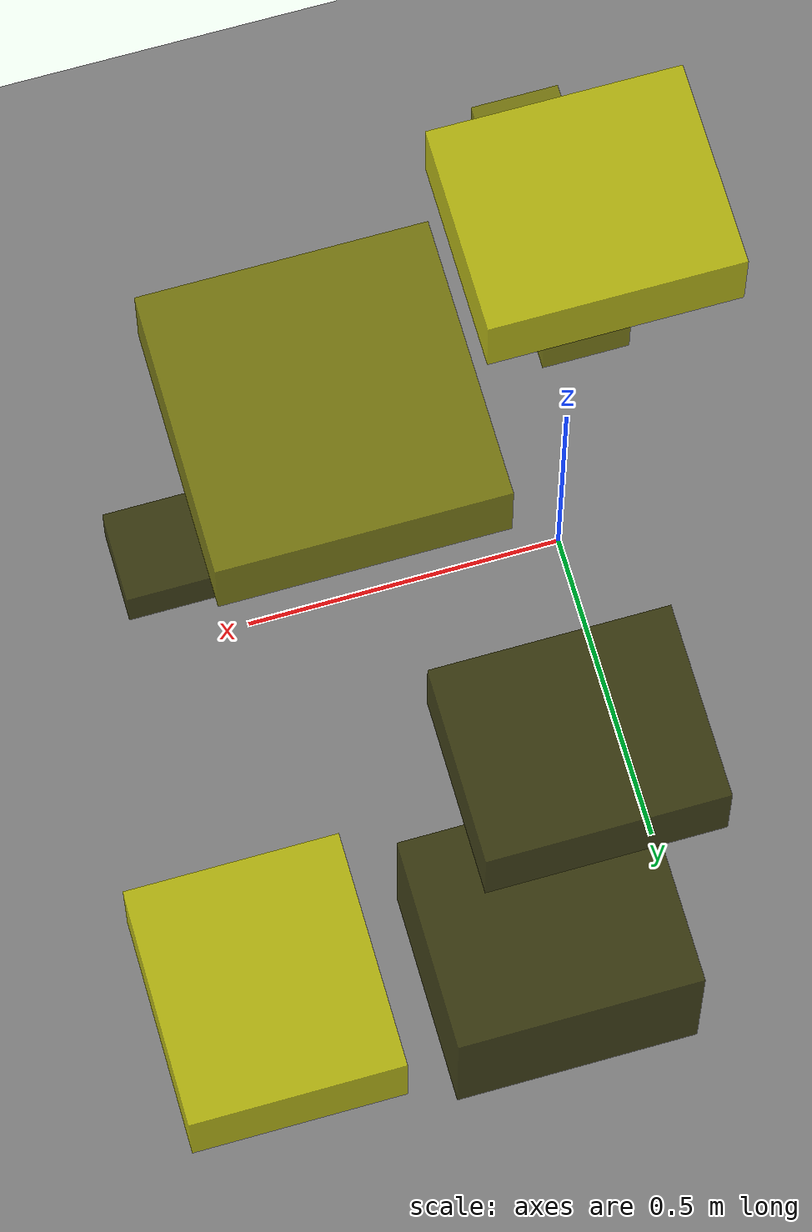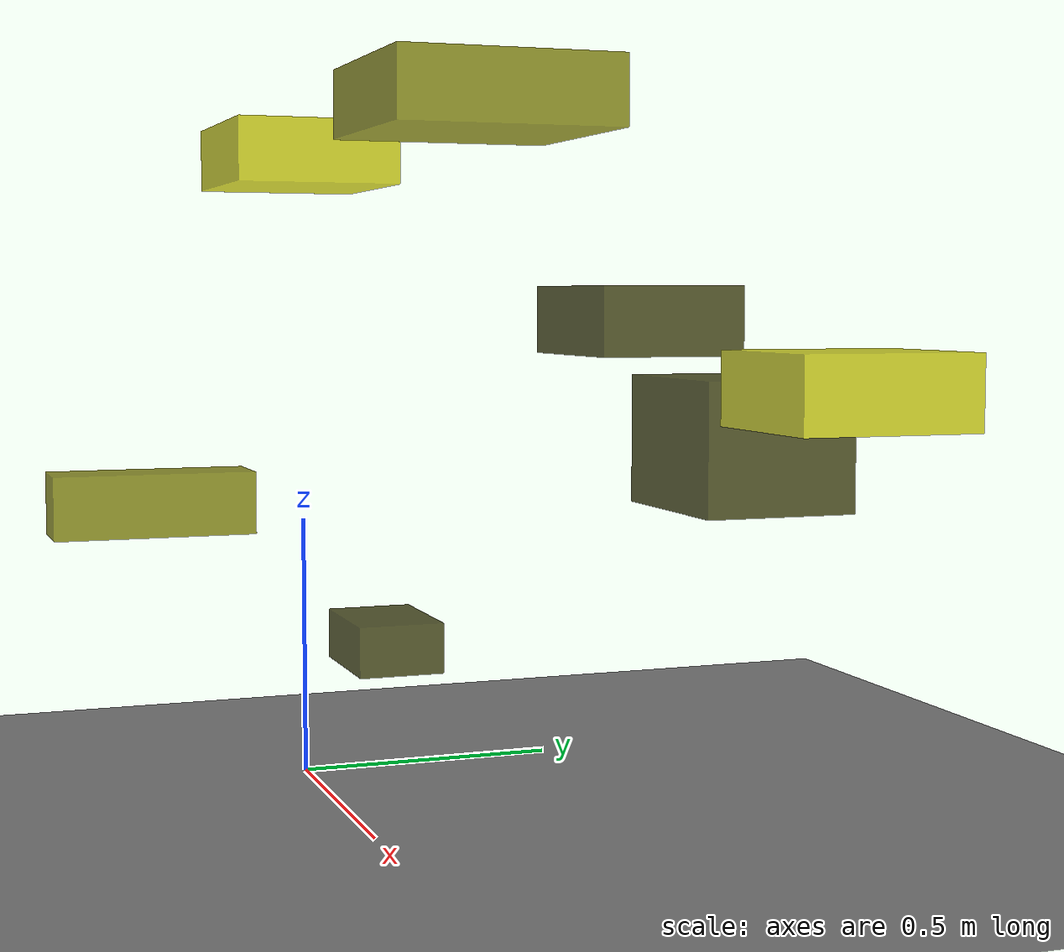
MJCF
<?xml version="1.0"?>
<mujoco model="obstacle_scene">
  <compiler angle="radian" coordinate="local"/>
  <option timestep="0.001" gravity="0 0 -9.81"/>

  <asset>
    <material name="obstacle_mat" rgba="0.8 0.8 0.0 0.8"/>
    <material name="ground_mat" rgba="0.5 0.5 0.5 1"/>
  </asset>

  <worldbody>
    <!-- Ground plane -->
    <geom name="ground" type="plane" size="3 3 0.1" material="ground_mat"/>

    <!-- Obstacles -->
    <body name="obstacle_0" pos="0.270988 0.811821 0.650607">
      <geom name="obs_0" type="box" size="0.176671 0.154128 0.128444" rgba="0.2 0.2 0.0 0.8"/>
    </body>
    <body name="obstacle_1" pos="-0.058618 -0.288521 0.536859">
      <geom name="obs_1" type="box" size="0.067046 0.192459 0.060310" rgba="0.5 0.5 0.0 0.8"/>
    </body>
    <body name="obstacle_2" pos="-0.009295 -0.004605 1.205129">
      <geom name="obs_2" type="box" size="0.183171 0.153271 0.059420" rgba="0.8 0.8 0.0 0.8"/>
    </body>
    <body name="obstacle_3" pos="0.593464 -0.006266 0.363733">
      <geom name="obs_3" type="box" size="0.100801 0.070718 0.041078" rgba="0.2 0.2 0.0 0.8"/>
    </body>
    <body name="obstacle_4" pos="0.421660 0.212079 1.283346">
      <geom name="obs_4" type="box" size="0.203592 0.204255 0.062730" rgba="0.5 0.5 0.0 0.8"/>
    </body>
    <body name="obstacle_5" pos="0.680467 0.814700 0.771164">
      <geom name="obs_5" type="box" size="0.153989 0.172938 0.069054" rgba="0.8 0.8 0.0 0.8"/>
    </body>
    <body name="obstacle_6" pos="0.180562 0.630568 0.889451">
      <geom name="obs_6" type="box" size="0.174418 0.144159 0.066876" rgba="0.2 0.2 0.0 0.8"/>
    </body>
  </worldbody>
</mujoco>
